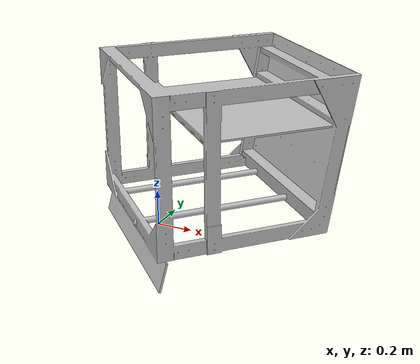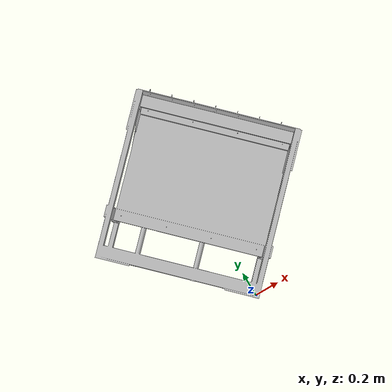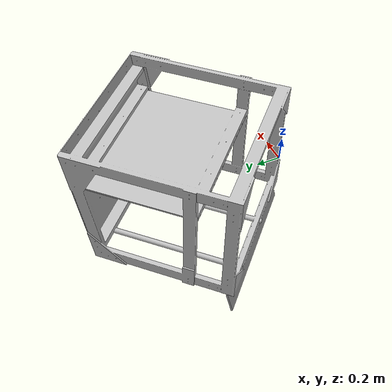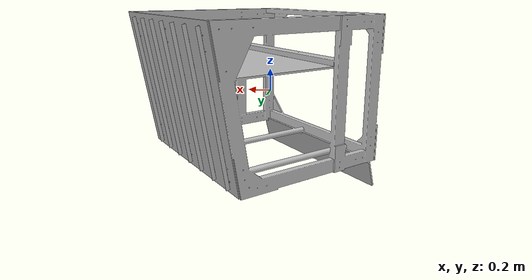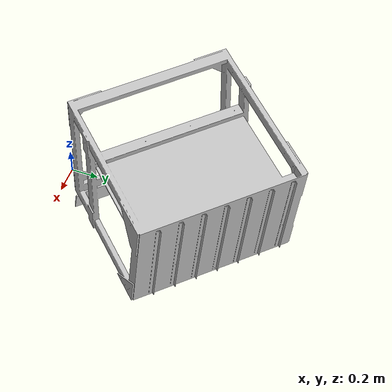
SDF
<?xml version="1.0" encoding="utf-8"?>
<sdf version="1.7">
  <model name="Station">
    <pose>0 0 -0.443912867568871 0 0 0</pose>

    <link name="Body">
      <gravity>1</gravity>
      <self_collide>0</self_collide>
      <pose>-0.00156202569450492 0.876254871940638 0.68672996307511 2.35216808247077 -1.5707963267949 3.14159265358978</pose>
      <must_be_base_link>1</must_be_base_link>
      <velocity_decay>
        <linear>0</linear>
        <angular>0</angular>
      </velocity_decay>
      <inertial>
        <mass>82.9981678115218</mass>
        <pose>0 0 0 0 0 0</pose>
        <inertia>
          <ixx>27.3607140430657</ixx>
          <ixy>1.58669613829594</ixy>
          <ixz>0.0283294764850764</ixz>
          <iyy>21.8141809572281</iyy>
          <iyz>0.011503117659058</iyz>
          <izz>23.5032095841239</izz>
        </inertia>
      </inertial>
      <collision name="Body_collision">
        <pose>-0.639160112132628 -0.940623251783402 -1.91901739490554 0 0 0</pose>
        <geometry>
          <mesh>
            <scale>1 1 1</scale>
            <uri>model://Station/meshes/Body_col.STL</uri>
          </mesh>
        </geometry>
        <surface>
          <contact>
            <ode />
          </contact>
          <friction>
            <ode>
              <mu>0</mu>
              <mu2>0</mu2>
            </ode>
          </friction>
        </surface>
      </collision>
      <visual name="Body_visual">
        <pose>-0.639160112132628 -0.940623251783402 -1.91901739490554 0 0 0</pose>
        <material>
          <ambient>0.752941176470588 0.752941176470588 0.752941176470588 1</ambient>
          <diffuse>0.752941176470588 0.752941176470588 0.752941176470588 1</diffuse>
        </material>
        <geometry>
          <mesh>
            <scale>1 1 1</scale>
            <uri>model://Station/meshes/Body.STL</uri>
          </mesh>
        </geometry>
      </visual>
    </link>
  </model>
</sdf>
